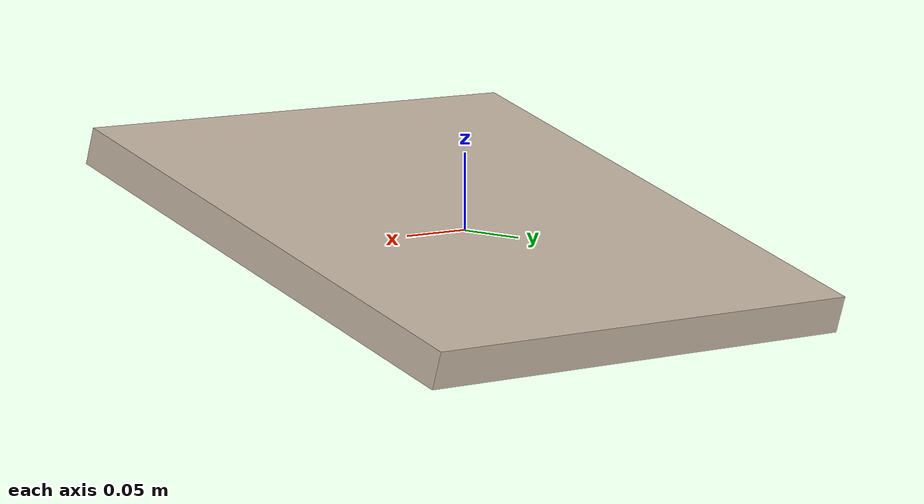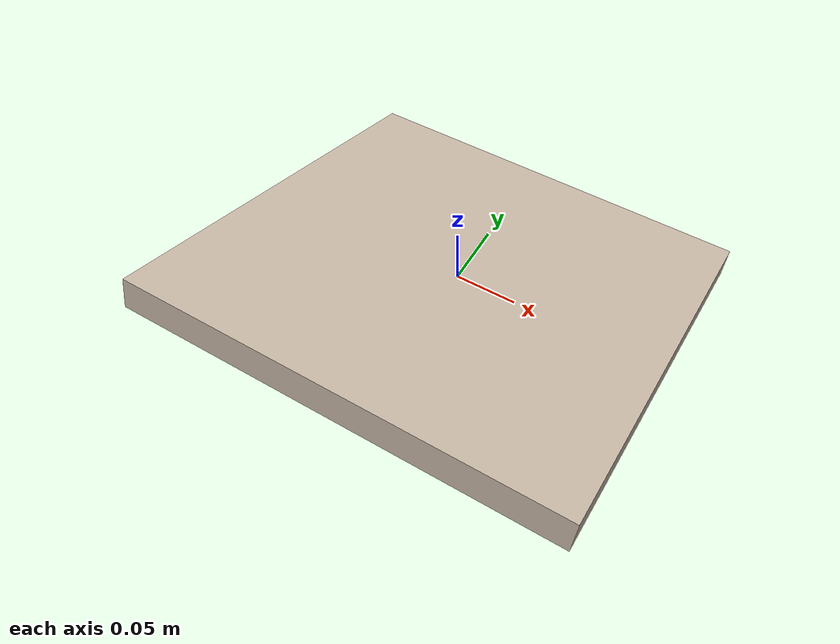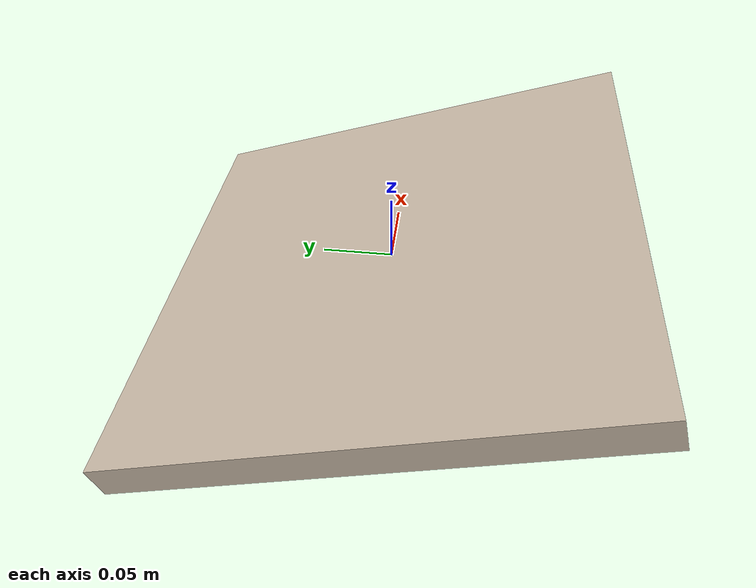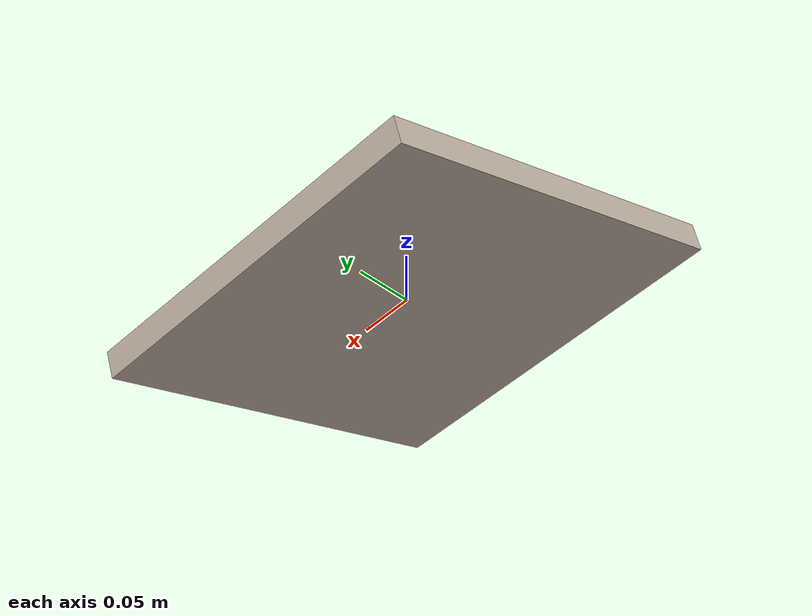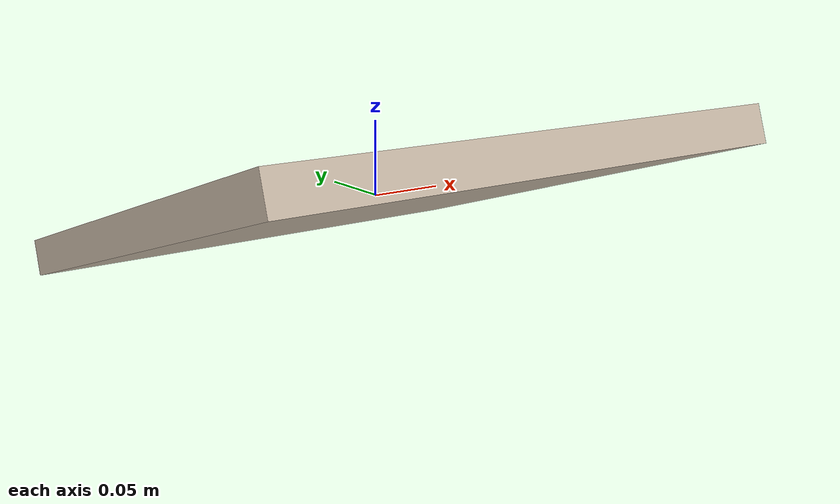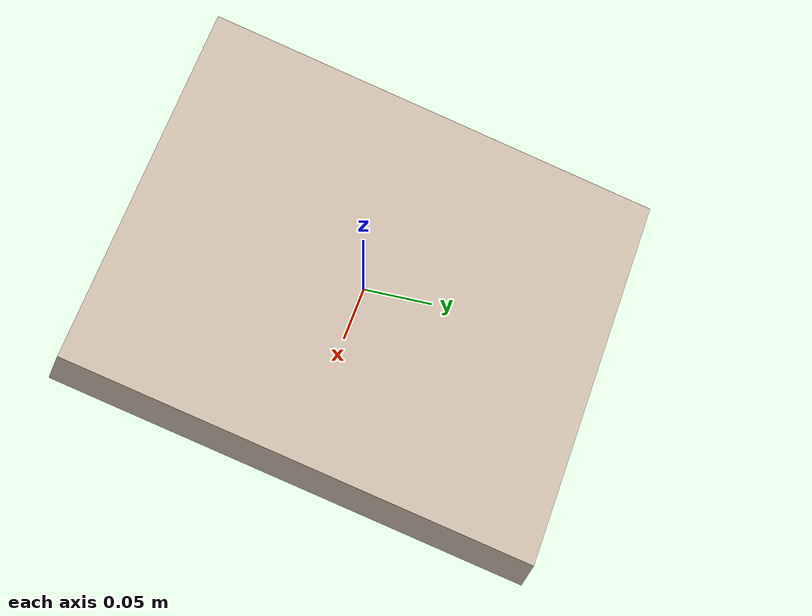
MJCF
<mujoco model="plane_tilted">
  <asset>
    <mesh file="meshes/plane_surfaces/tilted_horizontal_box.obj" name="plane_tilted_mesh"/>
  </asset>
  <worldbody>
    <body>
      <body name="object">
        <geom mesh="plane_tilted_mesh" type="mesh" quat="0.707107 0 0 0.707107"
              solimp="0.998 0.998 0.001" solref="0.001 1"
              density="3.125" friction="0.95 0.3 0.1" rgba="0.78 0.72 0.65 1"
              contype="1" conaffinity="1" group="0"/>
        <geom mesh="plane_tilted_mesh" type="mesh" quat="0.707107 0 0 0.707107"
              solimp="0.998 0.998 0.001" solref="0.001 1"
              density="1e-8" rgba="0.78 0.72 0.65 1"
              contype="0" conaffinity="0" group="1"/>
      </body>
      <site rgba="0 0 0 0" size="0.005" pos="0 0 -0.02" name="bottom_site"/>
      <site rgba="0 0 0 0" size="0.005" pos="0 0 0.02" name="top_site"/>
      <site rgba="0 0 0 0" size="0.005" pos="0.175 0.175 0" name="horizontal_radius_site"/>
    </body>
  </worldbody>
</mujoco>
